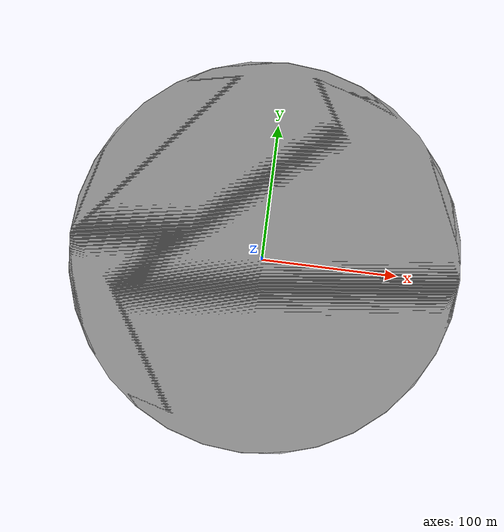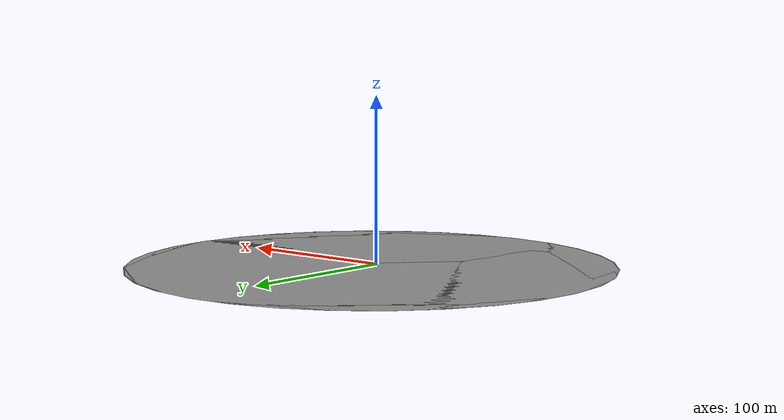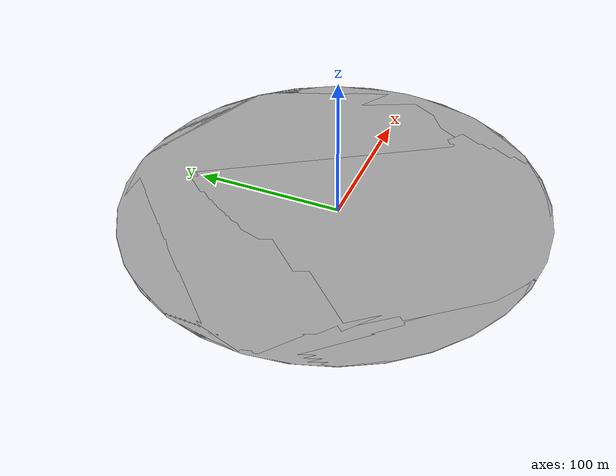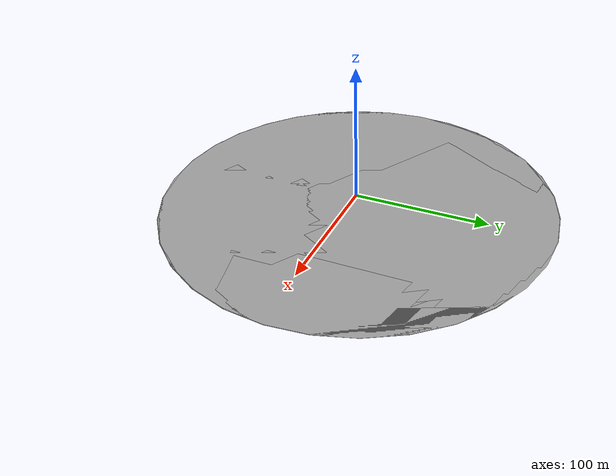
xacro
<?xml version="1.0"?>
<robot  xmlns:xacro="http://www.ros.org/wiki/xacro" name="quadcopter_full">

  <xacro:property name="robot_name" value="quadcopter"/>

  <!--Include URDF files -->

  <!--Quadcopter Base-->
  <xacro:include filename="$(find quad_sim)/quadcopter/urdf/quad_base.urdf.xacro"/>
   <quad_base_macro/>

  <!--IMU and Ground Truth Sensors-->
  <xacro:include filename="$(find quad_sim)/quadcopter/urdf/sensors.xacro"/>
  <quad_sensors robot_name="${robot_name}"/>

  <!-- MATLAB/Simulink-Gazebo Plugin -->
</robot>

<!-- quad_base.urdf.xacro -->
<robot xmlns:xacro="http://www.ros.org/wiki/xacro" name="quadcopter">
  <!--Include Frame, Rotor, and Marker model -->
  <xacro:include filename="$(find quad_sim)/quadcopter/urdf/base/frame.xacro"/>
  <xacro:include filename="$(find quad_sim)/quadcopter/urdf/base/rotor.xacro"/>
  <xacro:include filename="$(find quad_sim)/quadcopter/urdf/base/marker.xacro"/>

	<!-- Quadcopter Description -->
	<xacro:macro name="quad_base_macro">
  <xacro:frame/>

  <!--Rotors-->
  <xacro:rotor id="1">
  </xacro:rotor>

  <xacro:rotor id="2">
  </xacro:rotor>

  <xacro:rotor id="3">
  </xacro:rotor>

  <xacro:rotor id="4">
  </xacro:rotor>

  <!--Markers-->
  <xacro:marker id="1" color="Red">
  </xacro:marker>

  <xacro:marker id="2" color="Green">
  </xacro:marker>

  <xacro:marker id="3" color="Blue">
  </xacro:marker>

  <xacro:marker id="4" color="Yellow">
  </xacro:marker>

 <!--Rotor's Joints-->
 <joint name="rotor1_joint" type="fixed">
    <origin xyz="0.205 0.205 0.03" rpy="0 0 0"/>
    <parent link="frame_link"/>
    <child link="rotor1_link"/>
  </joint>

  <joint name="rotor2_joint" type="fixed">
    <origin xyz="-0.205 0.205 0.03" rpy="0 0 0"/>
    <parent link="frame_link"/>
    <child link="rotor2_link"/>
  </joint>

  <joint name="rotor3_joint" type="fixed">
    <origin xyz="-0.205 -0.205 0.03" rpy="0 0 0"/>
    <parent link="frame_link"/>
    <child link="rotor3_link"/>
  </joint>

  <joint name="rotor4_joint" type="fixed">
    <origin xyz="0.205 -0.205 0.03" rpy="0 0 0"/>
    <parent link="frame_link"/>
    <child link="rotor4_link"/>
  </joint>

  <!--Marker's Joints-->
  <joint name="marker1_joint" type="fixed">
    <origin xyz="0.205 0.205 0.06" rpy="0 0 0"/>
    <parent link="frame_link"/>
    <child link="marker1_link"/>
  </joint>

  <joint name="marker2_joint" type="fixed">
    <origin xyz="-0.205 0.205 0.06" rpy="0 0 0"/>
    <parent link="frame_link"/>
    <child link="marker2_link"/>
  </joint>

  <joint name="marker3_joint" type="fixed">
    <origin xyz="-0.205 -0.205 0.06" rpy="0 0 0"/>
    <parent link="frame_link"/>
    <child link="marker3_link"/>
  </joint>

  <joint name="marker4_joint" type="fixed">
    <origin xyz="0.205 -0.205 0.06" rpy="0 0 0"/>
    <parent link="frame_link"/>
    <child link="marker4_link"/>
  </joint>

  </xacro:macro>
</robot>

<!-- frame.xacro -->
<robot xmlns:xacro="http://www.ros.org/wiki/xacro" name="frame">
  <xacro:macro name="frame">
    <link name="frame_link">
      <inertial>
        <origin xyz="0 0 -0.07" rpy="0 0 0"/>
        <mass value="0.4"/>
        <inertia ixx="0.0038278" ixy="0.0" ixz="0.0" iyy="0.0038278" iyz="0.0" izz="0.0071345"/>
      </inertial>

      <visual>
        <origin xyz="0 0 0" rpy="0 0 0"/>
        <geometry>
          <mesh filename="package://quad_sim/quadcopter/meshes/quad_frame2.dae"/>
        </geometry>
      </visual>

      <collision>
        <origin xyz="0 0 0" rpy="0 0 0"/>
        <geometry>
          <mesh filename="package://quad_sim/quadcopter/meshes/quad_frame2.stl" scale="0.001 0.001 0.001"/>
        </geometry>
      </collision>
    </link>

    <gazebo reference="frame_link">
      <material>Gazebo/Black</material>
    </gazebo>
  </xacro:macro>
</robot>

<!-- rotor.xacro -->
<robot xmlns:xacro="http://www.ros.org/wiki/xacro" name="rotor">
  <xacro:macro name="rotor" params="id">
    <link name="rotor${id}_link">
      <inertial>
        <origin xyz="0 0 0" rpy="0 0 0"/>
        <mass value="1e-04"/>
        <inertia ixx="1e-06" ixy="0.0" ixz="0.0" iyy="1e-06" iyz="0.0" izz="1e-06"/>
      </inertial>

      <visual>
        <origin xyz="0 0 0" rpy="0 0 0"/>
        <geometry>
          <mesh filename="package://quad_sim/quadcopter/meshes/quad_rotor.dae" scale="0.74359 0.74359 0"/>
        </geometry>
      </visual>

      <collision>
        <origin xyz="0 0 0" rpy="0 0 0"/>
        <geometry>
          <mesh filename="package://quad_sim/quadcopter/meshes/quad_rotor.stl" scale="0.00074359 0.00074359 0.001"/>
        </geometry>
      </collision>
    </link>
    <gazebo reference="rotor${id}_link">
    <material>Gazebo/Grey</material>
  </gazebo>
  </xacro:macro>
</robot>

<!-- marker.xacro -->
<robot xmlns:xacro="http://www.ros.org/wiki/xacro" name="marker">
  <xacro:macro name="marker" params="id color">
    <link name="marker${id}_link">
      <inertial>
        <origin xyz="0 0 0" rpy="0 0 0"/>
        <mass value="1e-03"/>
        <inertia ixx="1e-06" ixy="0.0" ixz="0.0" iyy="1e-06" iyz="0.0" izz="1e-06"/>
      </inertial>

      <visual>
        <origin xyz="0 0 0" rpy="0 0 0"/>
        <geometry>
          <sphere radius="0.025"/>
        </geometry>
      </visual>

      <collision>
        <origin xyz="0 0 0" rpy="0 0 0"/>
        <geometry>
          <sphere radius="0.025"/>
        </geometry>
      </collision>
    </link>

  <gazebo reference="marker${id}_link">
    <material>Gazebo/${color}</material>
  </gazebo>
  </xacro:macro>
</robot>
